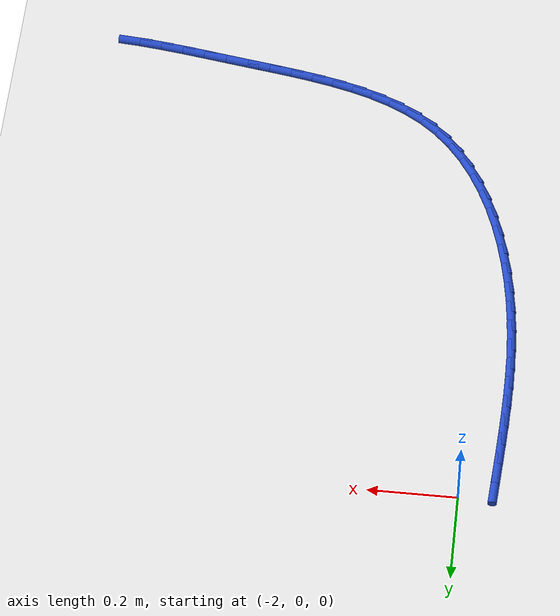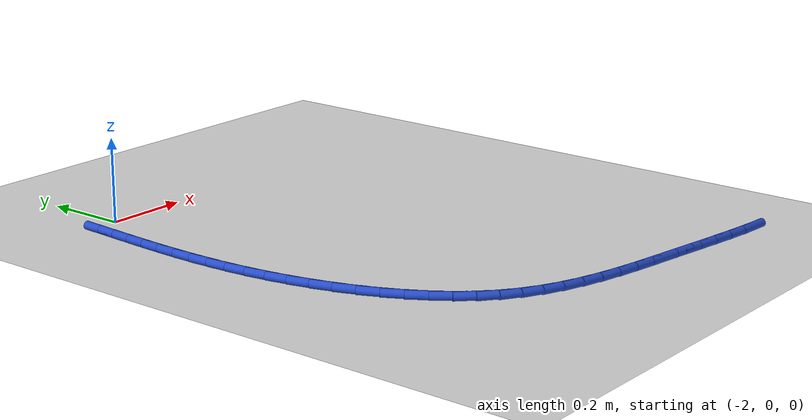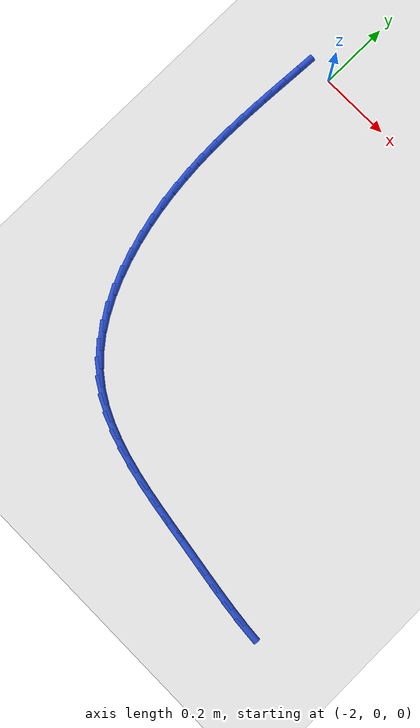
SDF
<sdf version="1.6">
 <world name="default">
  <model name="ground_plane">
   <static>1</static>
   <link name="link">
    <collision name="collision">
     <geometry><plane><normal>0 0 1</normal><size>100 100</size></plane></geometry>
     <surface><friction><ode><mu>100</mu><mu2>50</mu2></ode></friction></surface>
    </collision>
    <visual name="visual">
     <cast_shadows>0</cast_shadows>
     <geometry><plane><normal>0 0 1</normal><size>100 100</size></plane></geometry>
     <material>
      <script><uri>file://media/materials/scripts/gazebo.material</uri><name>Gazebo/WhiteGlow</name></script>
     </material>
    </visual>
   </link>
  </model>
  <model name="line">
   <link name="link_69">
    <pose>-2.076893992597407 -0.027210400143920472 0.01 0 1.57 1.512821156511768</pose>
    <collision name="collision">
     <geometry><cylinder><radius>0.01</radius><length>0.08</length></cylinder></geometry>
    </collision>
    <visual name="visual">
     <material>
      <script><name>Gazebo/Blue</name><uri>file://media/materials/scripts/gazebo.material</uri></script>
     </material>
     <geometry><cylinder><radius>0.01</radius><length>0.08</length></cylinder></geometry>
    </visual>
   </link>
   <link name="link_70">
    <pose>-2.079736200509778 -0.0761800340483395 0.01 0 1.57 1.5135902905626182</pose>
    <collision name="collision">
     <geometry><cylinder><radius>0.01</radius><length>0.08</length></cylinder></geometry>
    </collision>
    <visual name="visual">
     <material>
      <script><name>Gazebo/Blue</name><uri>file://media/materials/scripts/gazebo.material</uri></script>
     </material>
     <geometry><cylinder><radius>0.01</radius><length>0.08</length></cylinder></geometry>
    </visual>
   </link>
   <link name="link_71">
    <pose>-2.082546660322398 -0.12525515892260541 0.01 0 1.57 1.5194096632417813</pose>
    <collision name="collision">
     <geometry><cylinder><radius>0.01</radius><length>0.08</length></cylinder></geometry>
    </collision>
    <visual name="visual">
     <material>
      <script><name>Gazebo/Blue</name><uri>file://media/materials/scripts/gazebo.material</uri></script>
     </material>
     <geometry><cylinder><radius>0.01</radius><length>0.08</length></cylinder></geometry>
    </visual>
   </link>
   <link name="link_72">
    <pose>-2.085078234092666 -0.17447697876654816 0.01 0 1.57 1.5302284082251352</pose>
    <collision name="collision">
     <geometry><cylinder><radius>0.01</radius><length>0.08</length></cylinder></geometry>
    </collision>
    <visual name="visual">
     <material>
      <script><name>Gazebo/Blue</name><uri>file://media/materials/scripts/gazebo.material</uri></script>
     </material>
     <geometry><cylinder><radius>0.01</radius><length>0.08</length></cylinder></geometry>
    </visual>
   </link>
   <link name="link_73">
    <pose>-2.087083783877985 -0.2238866975799982 0.01 0 1.57 1.545974328633852</pose>
    <collision name="collision">
     <geometry><cylinder><radius>0.01</radius><length>0.08</length></cylinder></geometry>
    </collision>
    <visual name="visual">
     <material>
      <script><name>Gazebo/Blue</name><uri>file://media/materials/scripts/gazebo.material</uri></script>
     </material>
     <geometry><cylinder><radius>0.01</radius><length>0.08</length></cylinder></geometry>
    </visual>
   </link>
   <link name="link_74">
    <pose>-2.0883161717357552 -0.2735255193627836 0.01 0 1.57 1.566546869505128</pose>
    <collision name="collision">
     <geometry><cylinder><radius>0.01</radius><length>0.08</length></cylinder></geometry>
    </collision>
    <visual name="visual">
     <material>
      <script><name>Gazebo/Blue</name><uri>file://media/materials/scripts/gazebo.material</uri></script>
     </material>
     <geometry><cylinder><radius>0.01</radius><length>0.08</length></cylinder></geometry>
    </visual>
   </link>
   <link name="link_75">
    <pose>-2.088528259723378 -0.32343464811473477 0.01 0 1.57 -1.549785154398921</pose>
    <collision name="collision">
     <geometry><cylinder><radius>0.01</radius><length>0.08</length></cylinder></geometry>
    </collision>
    <visual name="visual">
     <material>
      <script><name>Gazebo/Blue</name><uri>file://media/materials/scripts/gazebo.material</uri></script>
     </material>
     <geometry><cylinder><radius>0.01</radius><length>0.08</length></cylinder></geometry>
    </visual>
   </link>
   <link name="link_76">
    <pose>-2.087472909898255 -0.37365528783568136 0.01 0 1.57 -1.520024196740073</pose>
    <collision name="collision">
     <geometry><cylinder><radius>0.01</radius><length>0.08</length></cylinder></geometry>
    </collision>
    <visual name="visual">
     <material>
      <script><name>Gazebo/Blue</name><uri>file://media/materials/scripts/gazebo.material</uri></script>
     </material>
     <geometry><cylinder><radius>0.01</radius><length>0.08</length></cylinder></geometry>
    </visual>
   </link>
   <link name="link_77">
    <pose>-2.084902984317786 -0.4242286425254529 0.01 0 1.57 -1.4860114306847125</pose>
    <collision name="collision">
     <geometry><cylinder><radius>0.01</radius><length>0.08</length></cylinder></geometry>
    </collision>
    <visual name="visual">
     <material>
      <script><name>Gazebo/Blue</name><uri>file://media/materials/scripts/gazebo.material</uri></script>
     </material>
     <geometry><cylinder><radius>0.01</radius><length>0.08</length></cylinder></geometry>
    </visual>
   </link>
   <link name="link_78">
    <pose>-2.080571345039374 -0.4751959161838799 0.01 0 1.57 -1.448066176140936</pose>
    <collision name="collision">
     <geometry><cylinder><radius>0.01</radius><length>0.08</length></cylinder></geometry>
    </collision>
    <visual name="visual">
     <material>
      <script><name>Gazebo/Blue</name><uri>file://media/materials/scripts/gazebo.material</uri></script>
     </material>
     <geometry><cylinder><radius>0.01</radius><length>0.08</length></cylinder></geometry>
    </visual>
   </link>
   <link name="link_79">
    <pose>-2.074230854268975 -0.5265983122058692 0.01 0 1.57 -1.4067299461371605</pose>
    <collision name="collision">
     <geometry><cylinder><radius>0.01</radius><length>0.08</length></cylinder></geometry>
    </collision>
    <visual name="visual">
     <material>
      <script><name>Gazebo/Blue</name><uri>file://media/materials/scripts/gazebo.material</uri></script>
     </material>
     <geometry><cylinder><radius>0.01</radius><length>0.08</length></cylinder></geometry>
    </visual>
   </link>
   <link name="link_80">
    <pose>-2.065658076801359 -0.5783805177142529 0.01 0 1.57 -1.362451264687425</pose>
    <collision name="collision">
     <geometry><cylinder><radius>0.01</radius><length>0.08</length></cylinder></geometry>
    </collision>
    <visual name="visual">
     <material>
      <script><name>Gazebo/Blue</name><uri>file://media/materials/scripts/gazebo.material</uri></script>
     </material>
     <geometry><cylinder><radius>0.01</radius><length>0.08</length></cylinder></geometry>
    </visual>
   </link>
   <link name="link_81">
    <pose>-2.0547191949970753 -0.6301222996355275 0.01 0 1.57 -1.3144723866468844</pose>
    <collision name="collision">
     <geometry><cylinder><radius>0.01</radius><length>0.08</length></cylinder></geometry>
    </collision>
    <visual name="visual">
     <material>
      <script><name>Gazebo/Blue</name><uri>file://media/materials/scripts/gazebo.material</uri></script>
     </material>
     <geometry><cylinder><radius>0.01</radius><length>0.08</length></cylinder></geometry>
    </visual>
   </link>
   <link name="link_82">
    <pose>-2.0413015677738326 -0.6813171945536404 0.01 0 1.57 -1.2617498716194702</pose>
    <collision name="collision">
     <geometry><cylinder><radius>0.01</radius><length>0.08</length></cylinder></geometry>
    </collision>
    <visual name="visual">
     <material>
      <script><name>Gazebo/Blue</name><uri>file://media/materials/scripts/gazebo.material</uri></script>
     </material>
     <geometry><cylinder><radius>0.01</radius><length>0.08</length></cylinder></geometry>
    </visual>
   </link>
   <link name="link_83">
    <pose>-2.0252925540493396 -0.7314587390525367 0.01 0 1.57 -1.2031248100803527</pose>
    <collision name="collision">
     <geometry><cylinder><radius>0.01</radius><length>0.08</length></cylinder></geometry>
    </collision>
    <visual name="visual">
     <material>
      <script><name>Gazebo/Blue</name><uri>file://media/materials/scripts/gazebo.material</uri></script>
     </material>
     <geometry><cylinder><radius>0.01</radius><length>0.08</length></cylinder></geometry>
    </visual>
   </link>
   <link name="link_84">
    <pose>-2.0065795127413053 -0.7800404697161641 0.01 0 1.57 -1.1373072984422543</pose>
    <collision name="collision">
     <geometry><cylinder><radius>0.01</radius><length>0.08</length></cylinder></geometry>
    </collision>
    <visual name="visual">
     <material>
      <script><name>Gazebo/Blue</name><uri>file://media/materials/scripts/gazebo.material</uri></script>
     </material>
     <geometry><cylinder><radius>0.01</radius><length>0.08</length></cylinder></geometry>
    </visual>
   </link>
   <link name="link_85">
    <pose>-1.985049802767438 -0.8265559231284696 0.01 0 1.57 -1.0628912750749993</pose>
    <collision name="collision">
     <geometry><cylinder><radius>0.01</radius><length>0.08</length></cylinder></geometry>
    </collision>
    <visual name="visual">
     <material>
      <script><name>Gazebo/Blue</name><uri>file://media/materials/scripts/gazebo.material</uri></script>
     </material>
     <geometry><cylinder><radius>0.01</radius><length>0.08</length></cylinder></geometry>
    </visual>
   </link>
   <link name="link_86">
    <pose>-1.9605907830454452 -0.8704986358733996 0.01 0 1.57 -0.9784247913309683</pose>
    <collision name="collision">
     <geometry><cylinder><radius>0.01</radius><length>0.08</length></cylinder></geometry>
    </collision>
    <visual name="visual">
     <material>
      <script><name>Gazebo/Blue</name><uri>file://media/materials/scripts/gazebo.material</uri></script>
     </material>
     <geometry><cylinder><radius>0.01</radius><length>0.08</length></cylinder></geometry>
    </visual>
   </link>
   <link name="link_87">
    <pose>-1.9330898124930362 -0.9113621445349016 0.01 0 1.57 -0.8825730519640845</pose>
    <collision name="collision">
     <geometry><cylinder><radius>0.01</radius><length>0.08</length></cylinder></geometry>
    </collision>
    <visual name="visual">
     <material>
      <script><name>Gazebo/Blue</name><uri>file://media/materials/scripts/gazebo.material</uri></script>
     </material>
     <geometry><cylinder><radius>0.01</radius><length>0.08</length></cylinder></geometry>
    </visual>
   </link>
   <link name="link_88">
    <pose>-1.9024342500279203 -0.9486399856969213 0.01 0 1.57 -0.7744151208141485</pose>
    <collision name="collision">
     <geometry><cylinder><radius>0.01</radius><length>0.08</length></cylinder></geometry>
    </collision>
    <visual name="visual">
     <material>
      <script><name>Gazebo/Blue</name><uri>file://media/materials/scripts/gazebo.material</uri></script>
     </material>
     <geometry><cylinder><radius>0.01</radius><length>0.08</length></cylinder></geometry>
    </visual>
   </link>
   <link name="link_89">
    <pose>-1.8685114545678054 -0.9818256959434062 0.01 0 1.57 -0.6555165443171067</pose>
    <collision name="collision">
     <geometry><cylinder><radius>0.01</radius><length>0.08</length></cylinder></geometry>
    </collision>
    <visual name="visual">
     <material>
      <script><name>Gazebo/Blue</name><uri>file://media/materials/scripts/gazebo.material</uri></script>
     </material>
     <geometry><cylinder><radius>0.01</radius><length>0.08</length></cylinder></geometry>
    </visual>
   </link>
   <link name="link_90">
    <pose>-1.8312414486938091 -1.0104843089700126 0.01 0 1.57 -0.5417397821315695</pose>
    <collision name="collision">
     <geometry><cylinder><radius>0.01</radius><length>0.08</length></cylinder></geometry>
    </collision>
    <visual name="visual">
     <material>
      <script><name>Gazebo/Blue</name><uri>file://media/materials/scripts/gazebo.material</uri></script>
     </material>
     <geometry><cylinder><radius>0.01</radius><length>0.08</length></cylinder></geometry>
    </visual>
   </link>
   <link name="link_91">
    <pose>-1.790829095377087 -1.0348043422785878 0.01 0 1.57 -0.44288365010307834</pose>
    <collision name="collision">
     <geometry><cylinder><radius>0.01</radius><length>0.08</length></cylinder></geometry>
    </collision>
    <visual name="visual">
     <material>
      <script><name>Gazebo/Blue</name><uri>file://media/materials/scripts/gazebo.material</uri></script>
     </material>
     <geometry><cylinder><radius>0.01</radius><length>0.08</length></cylinder></geometry>
    </visual>
   </link>
   <link name="link_92">
    <pose>-1.74762615165466 -1.0552958480777608 0.01 0 1.57 -0.35993220458670205</pose>
    <collision name="collision">
     <geometry><cylinder><radius>0.01</radius><length>0.08</length></cylinder></geometry>
    </collision>
    <visual name="visual">
     <material>
      <script><name>Gazebo/Blue</name><uri>file://media/materials/scripts/gazebo.material</uri></script>
     </material>
     <geometry><cylinder><radius>0.01</radius><length>0.08</length></cylinder></geometry>
    </visual>
   </link>
   <link name="link_93">
    <pose>-1.701985595491651 -1.0724715510514382 0.01 0 1.57 -0.29251503463734774</pose>
    <collision name="collision">
     <geometry><cylinder><radius>0.01</radius><length>0.08</length></cylinder></geometry>
    </collision>
    <visual name="visual">
     <material>
      <script><name>Gazebo/Blue</name><uri>file://media/materials/scripts/gazebo.material</uri></script>
     </material>
     <geometry><cylinder><radius>0.01</radius><length>0.08</length></cylinder></geometry>
    </visual>
   </link>
   <link name="link_94">
    <pose>-1.6542604048531808 -1.0868441758835263 0.01 0 1.57 -0.23960610999788456</pose>
    <collision name="collision">
     <geometry><cylinder><radius>0.01</radius><length>0.08</length></cylinder></geometry>
    </collision>
    <visual name="visual">
     <material>
      <script><name>Gazebo/Blue</name><uri>file://media/materials/scripts/gazebo.material</uri></script>
     </material>
     <geometry><cylinder><radius>0.01</radius><length>0.08</length></cylinder></geometry>
    </visual>
   </link>
   <link name="link_95">
    <pose>-1.604803557704372 -1.0989264472579316 0.01 0 1.57 -0.19999568029121853</pose>
    <collision name="collision">
     <geometry><cylinder><radius>0.01</radius><length>0.08</length></cylinder></geometry>
    </collision>
    <visual name="visual">
     <material>
      <script><name>Gazebo/Blue</name><uri>file://media/materials/scripts/gazebo.material</uri></script>
     </material>
     <geometry><cylinder><radius>0.01</radius><length>0.08</length></cylinder></geometry>
    </visual>
   </link>
   <link name="link_96">
    <pose>-1.5539680320103468 -1.1092310898585598 0.01 0 1.57 -0.1725725013930758</pose>
    <collision name="collision">
     <geometry><cylinder><radius>0.01</radius><length>0.08</length></cylinder></geometry>
    </collision>
    <visual name="visual">
     <material>
      <script><name>Gazebo/Blue</name><uri>file://media/materials/scripts/gazebo.material</uri></script>
     </material>
     <geometry><cylinder><radius>0.01</radius><length>0.08</length></cylinder></geometry>
    </visual>
   </link>
   <link name="link_97">
    <pose>-1.5021068057362277 -1.1182708283693175 0.01 0 1.57 -0.15646676199263027</pose>
    <collision name="collision">
     <geometry><cylinder><radius>0.01</radius><length>0.08</length></cylinder></geometry>
    </collision>
    <visual name="visual">
     <material>
      <script><name>Gazebo/Blue</name><uri>file://media/materials/scripts/gazebo.material</uri></script>
     </material>
     <geometry><cylinder><radius>0.01</radius><length>0.08</length></cylinder></geometry>
    </visual>
   </link>
   <link name="link_98">
    <pose>-1.4495728568471362 -1.1265583874741105 0.01 0 1.57 -0.15111059384621015</pose>
    <collision name="collision">
     <geometry><cylinder><radius>0.01</radius><length>0.08</length></cylinder></geometry>
    </collision>
    <visual name="visual">
     <material>
      <script><name>Gazebo/Blue</name><uri>file://media/materials/scripts/gazebo.material</uri></script>
     </material>
     <geometry><cylinder><radius>0.01</radius><length>0.08</length></cylinder></geometry>
    </visual>
   </link>
   <link name="link_99">
    <pose>-1.396719163308195 -1.1346064918568455 0.01 0 1.57 -0.15405091025387357</pose>
    <collision name="collision">
     <geometry><cylinder><radius>0.01</radius><length>0.08</length></cylinder></geometry>
    </collision>
    <visual name="visual">
     <material>
      <script><name>Gazebo/Blue</name><uri>file://media/materials/scripts/gazebo.material</uri></script>
     </material>
     <geometry><cylinder><radius>0.01</radius><length>0.08</length></cylinder></geometry>
    </visual>
   </link>
   <link name="link_100">
    <pose>-1.343869790804696 -1.1428130068753355 0.01 0 1.57 -0.15360382346796994</pose>
    <collision name="collision">
     <geometry><cylinder><radius>0.01</radius><length>0.08</length></cylinder></geometry>
    </collision>
    <visual name="visual">
     <material>
      <script><name>Gazebo/Blue</name><uri>file://media/materials/scripts/gazebo.material</uri></script>
     </material>
     <geometry><cylinder><radius>0.01</radius><length>0.08</length></cylinder></geometry>
    </visual>
   </link>
   <link name="link_101">
    <pose>-1.2911958520842357 -1.1509681643333318 0.01 0 1.57 -0.1458483806250262</pose>
    <collision name="collision">
     <geometry><cylinder><radius>0.01</radius><length>0.08</length></cylinder></geometry>
    </collision>
    <visual name="visual">
     <material>
      <script><name>Gazebo/Blue</name><uri>file://media/materials/scripts/gazebo.material</uri></script>
     </material>
     <geometry><cylinder><radius>0.01</radius><length>0.08</length></cylinder></geometry>
    </visual>
   </link>
   <link name="link_102">
    <pose>-1.2388180693827946 -1.1586620104995973 0.01 0 1.57 -0.13055295334241004</pose>
    <collision name="collision">
     <geometry><cylinder><radius>0.01</radius><length>0.08</length></cylinder></geometry>
    </collision>
    <visual name="visual">
     <material>
      <script><name>Gazebo/Blue</name><uri>file://media/materials/scripts/gazebo.material</uri></script>
     </material>
     <geometry><cylinder><radius>0.01</radius><length>0.08</length></cylinder></geometry>
    </visual>
   </link>
   <link name="link_103">
    <pose>-1.1868571340664116 -1.1654844690063946 0.01 0 1.57 -0.10733826024326254</pose>
    <collision name="collision">
     <geometry><cylinder><radius>0.01</radius><length>0.08</length></cylinder></geometry>
    </collision>
    <visual name="visual">
     <material>
      <script><name>Gazebo/Blue</name><uri>file://media/materials/scripts/gazebo.material</uri></script>
     </material>
     <geometry><cylinder><radius>0.01</radius><length>0.08</length></cylinder></geometry>
    </visual>
   </link>
   <link name="link_104">
    <pose>-1.1354337375011256 -1.1710254634859871 0.01 0 1.57 -0.0756838124167435</pose>
    <collision name="collision">
     <geometry><cylinder><radius>0.01</radius><length>0.08</length></cylinder></geometry>
    </collision>
    <visual name="visual">
     <material>
      <script><name>Gazebo/Blue</name><uri>file://media/materials/scripts/gazebo.material</uri></script>
     </material>
     <geometry><cylinder><radius>0.01</radius><length>0.08</length></cylinder></geometry>
    </visual>
   </link>
  </model>
 </world>
</sdf>
